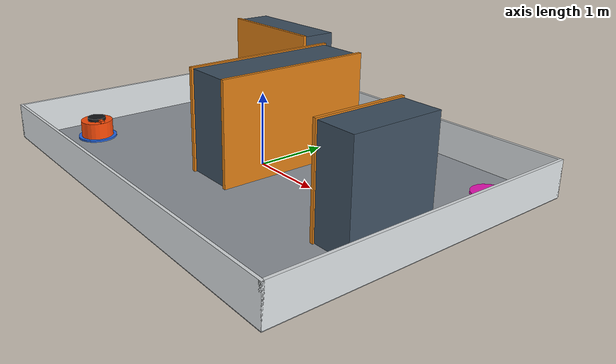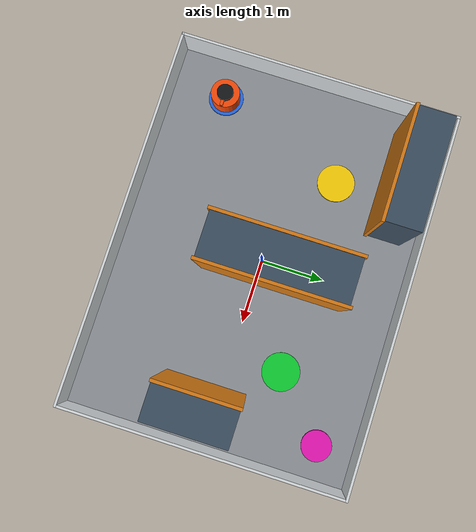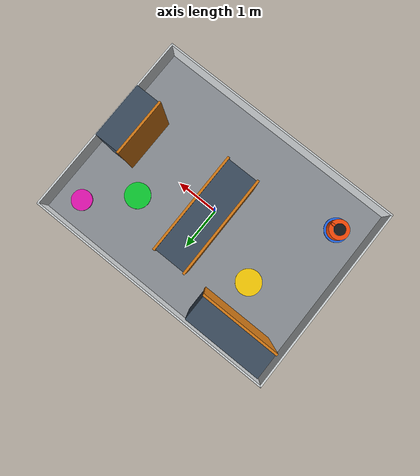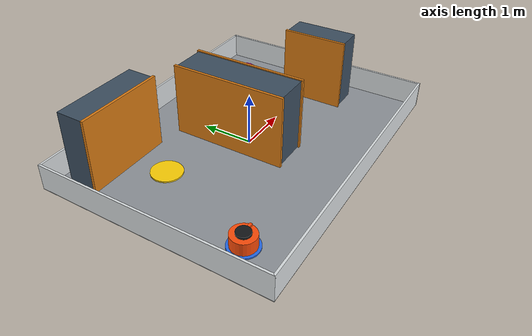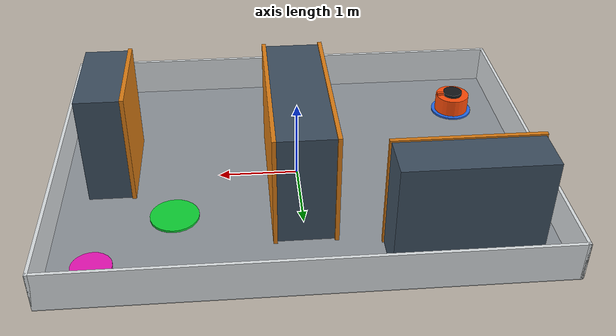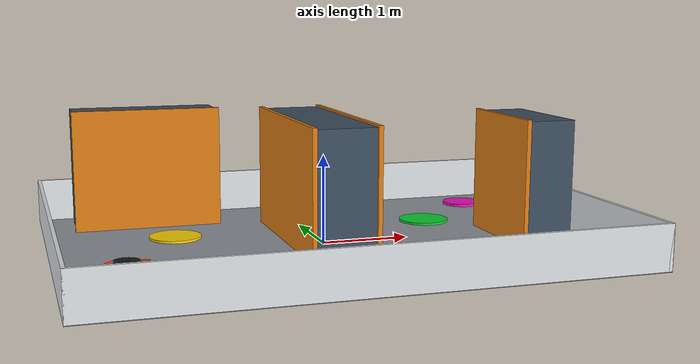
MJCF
<mujoco model="small_warehouse_navigation">
  <compiler angle="degree" autolimits="true"/>
  <option timestep="0.004" gravity="0 0 -9.81" integrator="implicitfast" solver="Newton"/>
  <size nconmax="300" njmax="600"/>
  <statistic center="0 0 0.5" extent="4.0"/>
  <visual>
    <global offwidth="640" offheight="480"/>
    <quality shadowsize="2048"/>
    <map znear="0.01" zfar="20"/>
    <headlight ambient="0.35 0.35 0.36" diffuse="0.75 0.75 0.72" specular="0.12 0.12 0.12"/>
  </visual>
  <asset>
    <texture name="floor_tex" type="2d" builtin="checker" rgb1="0.62 0.64 0.66" rgb2="0.50 0.52 0.55" width="512" height="512"/>
    <material name="floor_mat" texture="floor_tex" texrepeat="6 5" reflectance="0.04"/>
    <material name="orange_mat" rgba="1.0 0.30 0.035 1" specular="0.28" roughness="0.4"/>
    <material name="robot_dark" rgba="0.08 0.09 0.10 1"/>
    <material name="shelf_mat" rgba="0.24 0.31 0.38 1" specular="0.12" roughness="0.7"/>
    <material name="shelf_edge" rgba="0.86 0.49 0.08 1"/>
    <material name="wall_mat" rgba="0.86 0.88 0.89 1"/>
    <material name="start_mat" rgba="0.15 0.42 0.92 1" emission="0.12"/>
    <material name="yellow_marker" rgba="1.0 0.82 0.02 1" emission="0.35"/>
    <material name="green_marker" rgba="0.05 0.82 0.20 1" emission="0.30"/>
    <material name="camera_marker" rgba="0.92 0.08 0.72 1" emission="0.35"/>
  </asset>
  <default>
    <geom friction="0.8 0.01 0.001" condim="3" solref="0.01 1"/>
    <default class="world_part">
      <geom contype="1" conaffinity="6"/>
    </default>
    <default class="robot_part">
      <geom contype="2" conaffinity="5"/>
    </default>
  </default>
  <worldbody>
    <light name="warehouse_key" pos="-2 -2 7" dir="0.25 0.25 -1" directional="true" castshadow="true"/>
    <light name="warehouse_fill" pos="2 2 5" dir="-0.25 -0.2 -1" directional="true" diffuse="0.35 0.38 0.42"/>
    <camera name="top_camera" pos="-1.9798 -5.4394 6.4884" quat="0.9098437265 0.3768696111 -0.0664522807 -0.1604299972" fovy="45"/>

    <geom name="ground_geom" type="plane" size="3 2.25 0.1" material="floor_mat" class="world_part"/>
    <geom name="wall_north" type="box" pos="0 2.23 0.25" size="3.0 0.02 0.25" material="wall_mat" class="world_part"/>
    <geom name="wall_south" type="box" pos="0 -2.23 0.25" size="3.0 0.02 0.25" material="wall_mat" class="world_part"/>
    <geom name="wall_west" type="box" pos="-2.98 0 0.25" size="0.02 2.25 0.25" material="wall_mat" class="world_part"/>
    <geom name="wall_east" type="box" pos="2.98 0 0.25" size="0.02 2.25 0.25" material="wall_mat" class="world_part"/>

    <site name="start_marker" type="cylinder" pos="-2.35 -1.35 0.012" size="0.28 0.012" material="start_mat" group="2"/>
    <site name="checkpoint_a_marker" type="cylinder" pos="-1.55 0.75 0.014" size="0.30 0.014" material="yellow_marker" group="2"/>
    <site name="checkpoint_b_marker" type="cylinder" pos="1.55 0.80 0.014" size="0.30 0.014" material="green_marker" group="2"/>
    <site name="inspect_top_camera_marker" type="cylinder" pos="2.45 1.65 0.018" size="0.24 0.018" material="camera_marker" group="2"/>
    <site name="bypass_1_marker" type="sphere" pos="-1.25 -1.35 0.025" size="0.04" rgba="1 1 1 0.55" group="3"/>
    <site name="bypass_2_marker" type="sphere" pos="0.75 -1.35 0.025" size="0.04" rgba="1 1 1 0.55" group="3"/>
    <site name="bypass_3_marker" type="sphere" pos="1.15 -0.95 0.025" size="0.04" rgba="1 1 1 0.55" group="3"/>

    <body name="central_shelf" childclass="world_part" pos="0 0.25 0.7">
      <geom name="central_shelf_geom" type="box" size="0.35 1.10 0.70" material="shelf_mat"/>
      <geom name="central_shelf_edge_w" type="box" pos="-0.36 0 0" size="0.025 1.13 0.72" material="shelf_edge"/>
      <geom name="central_shelf_edge_e" type="box" pos="0.36 0 0" size="0.025 1.13 0.72" material="shelf_edge"/>
    </body>
    <body name="north_shelf" childclass="world_part" pos="-1.75 1.72 0.7">
      <geom name="north_shelf_geom" type="box" size="0.85 0.275 0.70" material="shelf_mat"/>
      <geom name="north_shelf_edge" type="box" pos="0 -0.285 0" size="0.87 0.025 0.72" material="shelf_edge"/>
    </body>
    <body name="east_shelf" childclass="world_part" pos="2.35 -0.25 0.7">
      <geom name="east_shelf_geom" type="box" size="0.275 0.625 0.70" material="shelf_mat"/>
      <geom name="east_shelf_edge" type="box" pos="-0.285 0 0" size="0.025 0.645 0.72" material="shelf_edge"/>
    </body>

    <body name="mobile_robot" childclass="robot_part" pos="-2.35 -1.35 0.14">
      <joint name="robot_x" type="slide" axis="1 0 0" range="-0.35 5.0" damping="40"/>
      <joint name="robot_y" type="slide" axis="0 1 0" range="-0.45 3.25" damping="40"/>
      <geom name="mobile_robot_geom" type="cylinder" size="0.23 0.12" mass="6" material="orange_mat"/>
      <geom name="robot_top" type="cylinder" pos="0 0 0.13" size="0.13 0.035" material="robot_dark"/>
      <geom name="robot_heading" type="box" pos="0.14 0 0.13" size="0.08 0.025 0.025" material="orange_mat"/>
    </body>
  </worldbody>
  <actuator>
    <position name="robot_x_motor" joint="robot_x" kp="320" ctrlrange="-0.35 5.0"/>
    <position name="robot_y_motor" joint="robot_y" kp="320" ctrlrange="-0.45 3.25"/>
  </actuator>
</mujoco>
